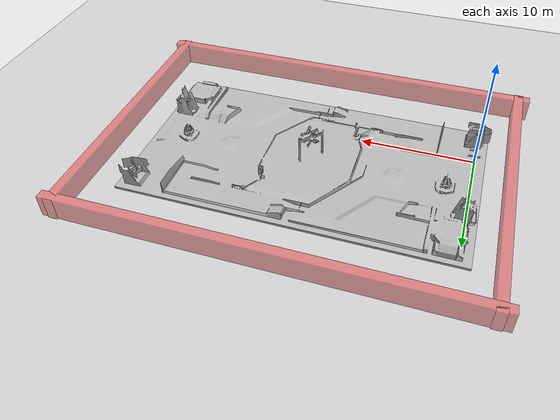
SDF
<?xml version="1.0" ?>
<sdf version="1.6" xmlns:ignition="https://gazebosim.org/schema">

  <world name="rm_2026_slam_world">
    <ignition:model_plugin_loading_timeout>600</ignition:model_plugin_loading_timeout>

    <!-- 物理引擎 -->
    <physics type="ode">
      <max_step_size>0.001</max_step_size>
      <real_time_update_rate>1000</real_time_update_rate>
      <real_time_factor>1.0</real_time_factor>
      <gravity>0 0 -9.8</gravity>
    </physics>

    <!-- 场景 -->
    <scene>
      <ambient>0.4 0.4 0.4 1</ambient>
      <background>0.7 0.7 0.7 1</background>
      <shadows>true</shadows>
    </scene>

    <!-- 光照 -->
    <include>
      <uri>model://sun</uri>
    </include>

    <!-- 地面 -->
    <include>
      <uri>model://ground_plane</uri>
      <pose>0 0 0 0 0 0</pose>
    </include>

    <!-- 你的地图 -->
    <include>
      <uri>model://rm_2026</uri>
      <pose>-1 -4 0 0 0 0</pose>
    </include>

    <model name="boundary_walls">
      <static>true</static>
      <pose>0 0 0 0 0 0</pose>

      <link name="north_wall">
        <pose>14 16 1.0 0 0 0</pose>
        <collision name="collision">
          <geometry><box><size>36 0.8 2.0</size></box></geometry>
        </collision>
        <visual name="visual">
          <geometry><box><size>36 0.8 2.0</size></box></geometry>
          <material><ambient>0.85 0.15 0.15 0.50</ambient><diffuse>0.90 0.20 0.20 0.50</diffuse></material>
        </visual>
      </link>

      <link name="south_wall">
        <pose>14 -8 1.0 0 0 0</pose>
        <collision name="collision">
          <geometry><box><size>36 0.8 2.0</size></box></geometry>
        </collision>
        <visual name="visual">
          <geometry><box><size>36 0.8 2.0</size></box></geometry>
          <material><ambient>0.85 0.15 0.15 0.50</ambient><diffuse>0.90 0.20 0.20 0.50</diffuse></material>
        </visual>
      </link>

      <link name="east_wall">
        <pose>31 4 1.0 0 0 0</pose>
        <collision name="collision">
          <geometry><box><size>0.8 25 2.0</size></box></geometry>
        </collision>
        <visual name="visual">
          <geometry><box><size>0.8 25 2.0</size></box></geometry>
          <material><ambient>0.85 0.15 0.15 0.50</ambient><diffuse>0.90 0.20 0.20 0.50</diffuse></material>
        </visual>
      </link>

      <link name="west_wall">
        <pose>-3 4 1.0 0 0 0</pose>
        <collision name="collision">
          <geometry><box><size>0.8 25 2.0</size></box></geometry>
        </collision>
        <visual name="visual">
          <geometry><box><size>0.8 25 2.0</size></box></geometry>
          <material><ambient>0.85 0.15 0.15 0.50</ambient><diffuse>0.90 0.20 0.20 0.50</diffuse></material>
        </visual>
      </link>
    </model>

  </world>

</sdf>

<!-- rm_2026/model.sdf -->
<sdf version="1.6">
  <model name="rm_2026">

    <static>true</static>

    <link name="map_link">

      <inertial>
        <mass>1.0</mass>
        <inertia>
          <ixx>1.0</ixx>
          <ixy>0.0</ixy>
          <ixz>0.0</ixz>
          <iyy>1.0</iyy>
          <iyz>0.0</iyz>
          <izz>1.0</izz>
        </inertia>
      </inertial>

      <!-- ================= 可视化 ================= -->
      <visual name="visual">
        <!-- ✅ 向上抬 2cm -->
        <pose>0 0 0.02 0 0 0</pose>

        <cast_shadows>false</cast_shadows>
        <geometry>
          <mesh>
            <uri>model://rm_2026/meshes/rm_map_clean_try.stl</uri>
            <scale>0.001 0.001 0.001</scale>
          </mesh>
        </geometry>

        <material>
          <ambient>0.5 0.5 0.5 1</ambient>
          <diffuse>0.7 0.7 0.7 1</diffuse>
          <specular>0.1 0.1 0.1 1</specular>
        </material>
      </visual>

      <!-- ================= 碰撞体 ================= -->
      <collision name="collision">
        <!-- ⚠️ 必须和 visual 一样 -->
        <pose>0 0 0.02 0 0 0</pose>

        <geometry>
          <mesh>
            <uri>model://rm_2026/meshes/rm_map.stl</uri>
            <scale>0.001 0.001 0.001</scale>
          </mesh>
        </geometry>

        <surface>
          <friction>
            <ode>
              <mu>1.0</mu>
              <mu2>1.0</mu2>
            </ode>
          </friction>
          <contact>
            <ode>
              <kp>1e8</kp>
              <kd>1.0</kd>
              <min_depth>0.001</min_depth>
            </ode>
          </contact>
        </surface>
      </collision>

      <self_collide>false</self_collide>
      <gravity>false</gravity>
      <kinematic>false</kinematic>

    </link>
  </model>
</sdf>
